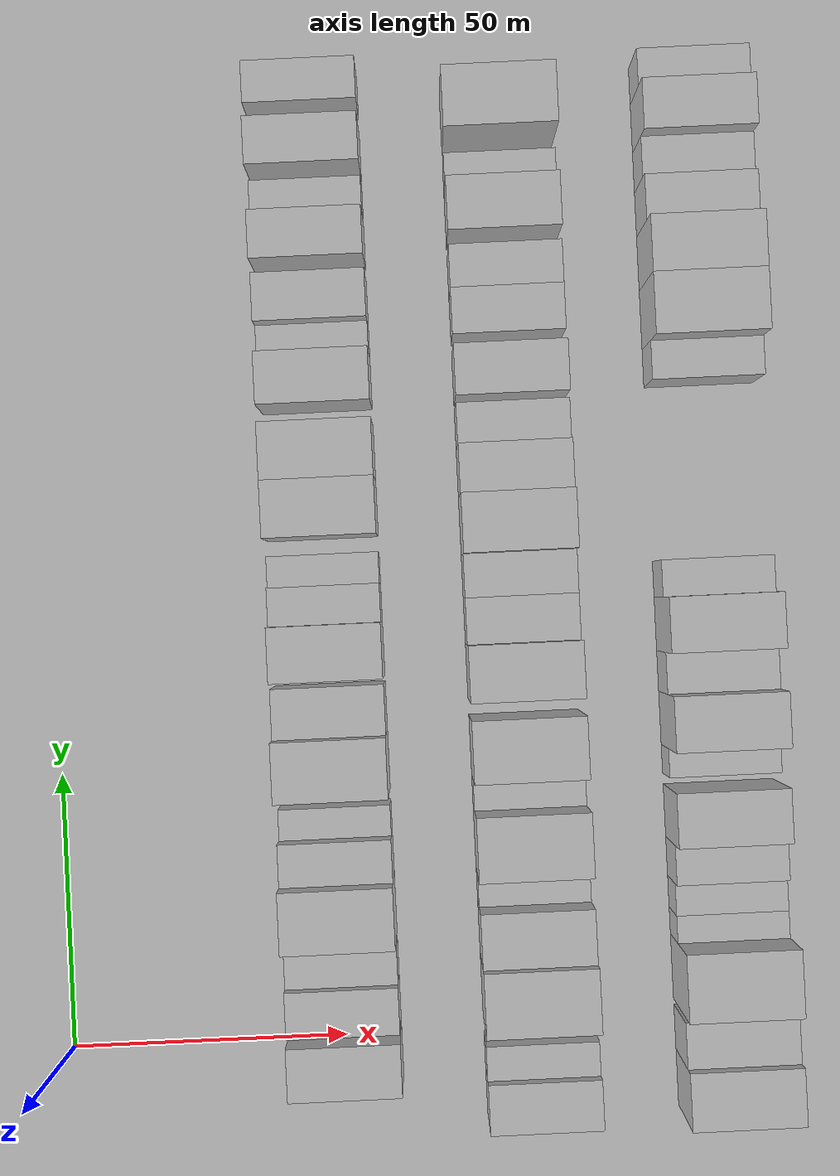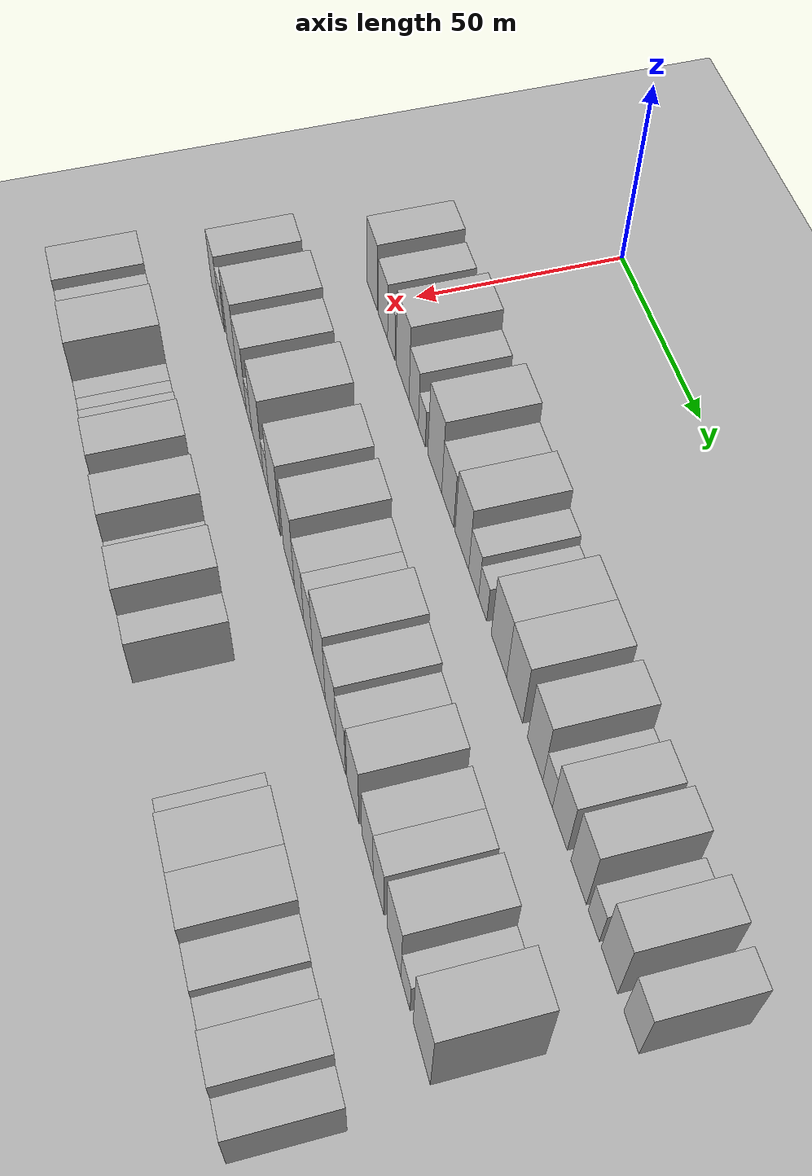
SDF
<sdf version="1.6">
 <world name="default">
  <include><name>ground_plane_1</name><uri>model://HANNAS_ground_plane</uri></include>
  <include>
   <name>ground_plane_2</name>
   <uri>model://HANNAS_ground_plane</uri>
   <pose>100 0 0  0 0 0</pose>
  </include>
  <model name="building_40">
   <static>1</static>
   <pose>50.0000 -2.5886 0 0.000000 0.000000 0.000000</pose>
   <link name="link">
    <pose>0 0 10.50 0 0 0</pose>
    <collision name="collision"><geometry><box><size>20.0000 9.3358 21.0000</size></box></geometry></collision>
    <visual name="visual">
     <cast_shadows>0</cast_shadows>
     <geometry><box><size>20.0000 9.3358 21.0000</size></box></geometry>
     <material>
      <script>
       <uri>model://HANNAS_wall/materials/scripts</uri>
       <uri>model://HANNAS_wall/materials/textures</uri>
       <name>vrc/HANNAS_wall</name>
      </script>
     </material>
    </visual>
   </link>
  </model>
  <model name="building_41">
   <static>1</static>
   <pose>50.0000 7.1892 0 0.000000 0.000000 0.000000</pose>
   <link name="link">
    <pose>0 0 9.00 0 0 0</pose>
    <collision name="collision"><geometry><box><size>20.0000 8.2199 18.0000</size></box></geometry></collision>
    <visual name="visual">
     <cast_shadows>0</cast_shadows>
     <geometry><box><size>20.0000 8.2199 18.0000</size></box></geometry>
     <material>
      <script>
       <uri>model://HANNAS_wall/materials/scripts</uri>
       <uri>model://HANNAS_wall/materials/textures</uri>
       <name>vrc/HANNAS_wall</name>
      </script>
     </material>
    </visual>
   </link>
  </model>
  <model name="building_42">
   <static>1</static>
   <pose>50.0000 14.4891 0 0.000000 0.000000 0.000000</pose>
   <link name="link">
    <pose>0 0 7.50 0 0 0</pose>
    <collision name="collision"><geometry><box><size>20.0000 6.3799 15.0000</size></box></geometry></collision>
    <visual name="visual">
     <cast_shadows>0</cast_shadows>
     <geometry><box><size>20.0000 6.3799 15.0000</size></box></geometry>
     <material>
      <script>
       <uri>model://HANNAS_wall/materials/scripts</uri>
       <uri>model://HANNAS_wall/materials/textures</uri>
       <name>vrc/HANNAS_wall</name>
      </script>
     </material>
    </visual>
   </link>
  </model>
  <model name="building_43">
   <static>1</static>
   <pose>50.0000 24.1410 0 0.000000 0.000000 0.000000</pose>
   <link name="link">
    <pose>0 0 12.00 0 0 0</pose>
    <collision name="collision"><geometry><box><size>20.0000 10.9238 24.0000</size></box></geometry></collision>
    <visual name="visual">
     <cast_shadows>0</cast_shadows>
     <geometry><box><size>20.0000 10.9238 24.0000</size></box></geometry>
     <material>
      <script>
       <uri>model://HANNAS_wall/materials/scripts</uri>
       <uri>model://HANNAS_wall/materials/textures</uri>
       <name>vrc/HANNAS_wall</name>
      </script>
     </material>
    </visual>
   </link>
  </model>
  <model name="building_44">
   <static>1</static>
   <pose>50.0000 33.4084 0 0.000000 0.000000 0.000000</pose>
   <link name="link">
    <pose>0 0 9.00 0 0 0</pose>
    <collision name="collision"><geometry><box><size>20.0000 7.6111 18.0000</size></box></geometry></collision>
    <visual name="visual">
     <cast_shadows>0</cast_shadows>
     <geometry><box><size>20.0000 7.6111 18.0000</size></box></geometry>
     <material>
      <script>
       <uri>model://HANNAS_wall/materials/scripts</uri>
       <uri>model://HANNAS_wall/materials/textures</uri>
       <name>vrc/HANNAS_wall</name>
      </script>
     </material>
    </visual>
   </link>
  </model>
  <model name="building_45">
   <static>1</static>
   <pose>50.0000 39.9796 0 0.000000 0.000000 0.000000</pose>
   <link name="link">
    <pose>0 0 6.00 0 0 0</pose>
    <collision name="collision"><geometry><box><size>20.0000 5.5313 12.0000</size></box></geometry></collision>
    <visual name="visual">
     <cast_shadows>0</cast_shadows>
     <geometry><box><size>20.0000 5.5313 12.0000</size></box></geometry>
     <material>
      <script>
       <uri>model://HANNAS_wall/materials/scripts</uri>
       <uri>model://HANNAS_wall/materials/textures</uri>
       <name>vrc/HANNAS_wall</name>
      </script>
     </material>
    </visual>
   </link>
  </model>
  <model name="building_46">
   <static>1</static>
   <pose>50.0000 50.0990 0 0.000000 0.000000 0.000000</pose>
   <link name="link">
    <pose>0 0 12.00 0 0 0</pose>
    <collision name="collision"><geometry><box><size>20.0000 10.7075 24.0000</size></box></geometry></collision>
    <visual name="visual">
     <cast_shadows>0</cast_shadows>
     <geometry><box><size>20.0000 10.7075 24.0000</size></box></geometry>
     <material>
      <script>
       <uri>model://HANNAS_wall/materials/scripts</uri>
       <uri>model://HANNAS_wall/materials/textures</uri>
       <name>vrc/HANNAS_wall</name>
      </script>
     </material>
    </visual>
   </link>
  </model>
  <model name="building_47">
   <static>1</static>
   <pose>50.0000 59.9504 0 0.000000 0.000000 0.000000</pose>
   <link name="link">
    <pose>0 0 9.00 0 0 0</pose>
    <collision name="collision"><geometry><box><size>20.0000 8.9954 18.0000</size></box></geometry></collision>
    <visual name="visual">
     <cast_shadows>0</cast_shadows>
     <geometry><box><size>20.0000 8.9954 18.0000</size></box></geometry>
     <material>
      <script>
       <uri>model://HANNAS_wall/materials/scripts</uri>
       <uri>model://HANNAS_wall/materials/textures</uri>
       <name>vrc/HANNAS_wall</name>
      </script>
     </material>
    </visual>
   </link>
  </model>
  <model name="building_48">
   <static>1</static>
   <pose>50.0000 70.3845 0 0.000000 0.000000 0.000000</pose>
   <link name="link">
    <pose>0 0 10.50 0 0 0</pose>
    <collision name="collision"><geometry><box><size>20.0000 9.8727 21.0000</size></box></geometry></collision>
    <visual name="visual">
     <cast_shadows>0</cast_shadows>
     <geometry><box><size>20.0000 9.8727 21.0000</size></box></geometry>
     <material>
      <script>
       <uri>model://HANNAS_wall/materials/scripts</uri>
       <uri>model://HANNAS_wall/materials/textures</uri>
       <name>vrc/HANNAS_wall</name>
      </script>
     </material>
    </visual>
   </link>
  </model>
  <model name="building_49">
   <static>1</static>
   <pose>50.0000 78.7735 0 0.000000 0.000000 0.000000</pose>
   <link name="link">
    <pose>0 0 7.50 0 0 0</pose>
    <collision name="collision"><geometry><box><size>20.0000 6.9052 15.0000</size></box></geometry></collision>
    <visual name="visual">
     <cast_shadows>0</cast_shadows>
     <geometry><box><size>20.0000 6.9052 15.0000</size></box></geometry>
     <material>
      <script>
       <uri>model://HANNAS_wall/materials/scripts</uri>
       <uri>model://HANNAS_wall/materials/textures</uri>
       <name>vrc/HANNAS_wall</name>
      </script>
     </material>
    </visual>
   </link>
  </model>
  <model name="building_50">
   <static>1</static>
   <pose>50.0000 85.0371 0 0.000000 0.000000 0.000000</pose>
   <link name="link">
    <pose>0 0 6.00 0 0 0</pose>
    <collision name="collision"><geometry><box><size>20.0000 5.6220 12.0000</size></box></geometry></collision>
    <visual name="visual">
     <cast_shadows>0</cast_shadows>
     <geometry><box><size>20.0000 5.6220 12.0000</size></box></geometry>
     <material>
      <script>
       <uri>model://HANNAS_wall/materials/scripts</uri>
       <uri>model://HANNAS_wall/materials/textures</uri>
       <name>vrc/HANNAS_wall</name>
      </script>
     </material>
    </visual>
   </link>
  </model>
  <model name="building_51">
   <static>1</static>
   <pose>50.0000 95.9255 0 0.000000 0.000000 0.000000</pose>
   <link name="link">
    <pose>0 0 10.50 0 0 0</pose>
    <collision name="collision"><geometry><box><size>20.0000 10.1547 21.0000</size></box></geometry></collision>
    <visual name="visual">
     <cast_shadows>0</cast_shadows>
     <geometry><box><size>20.0000 10.1547 21.0000</size></box></geometry>
     <material>
      <script>
       <uri>model://HANNAS_wall/materials/scripts</uri>
       <uri>model://HANNAS_wall/materials/textures</uri>
       <name>vrc/HANNAS_wall</name>
      </script>
     </material>
    </visual>
   </link>
  </model>
  <model name="building_52">
   <static>1</static>
   <pose>50.0000 106.0826 0 0.000000 0.000000 0.000000</pose>
   <link name="link">
    <pose>0 0 10.50 0 0 0</pose>
    <collision name="collision"><geometry><box><size>20.0000 10.1595 21.0000</size></box></geometry></collision>
    <visual name="visual">
     <cast_shadows>0</cast_shadows>
     <geometry><box><size>20.0000 10.1595 21.0000</size></box></geometry>
     <material>
      <script>
       <uri>model://HANNAS_wall/materials/scripts</uri>
       <uri>model://HANNAS_wall/materials/textures</uri>
       <name>vrc/HANNAS_wall</name>
      </script>
     </material>
    </visual>
   </link>
  </model>
  <model name="building_53">
   <static>1</static>
   <pose>50.0000 118.8190 0 0.000000 0.000000 0.000000</pose>
   <link name="link">
    <pose>0 0 10.50 0 0 0</pose>
    <collision name="collision"><geometry><box><size>20.0000 9.3132 21.0000</size></box></geometry></collision>
    <visual name="visual">
     <cast_shadows>0</cast_shadows>
     <geometry><box><size>20.0000 9.3132 21.0000</size></box></geometry>
     <material>
      <script>
       <uri>model://HANNAS_wall/materials/scripts</uri>
       <uri>model://HANNAS_wall/materials/textures</uri>
       <name>vrc/HANNAS_wall</name>
      </script>
     </material>
    </visual>
   </link>
  </model>
  <model name="building_54">
   <static>1</static>
   <pose>50.0000 126.2785 0 0.000000 0.000000 0.000000</pose>
   <link name="link">
    <pose>0 0 6.00 0 0 0</pose>
    <collision name="collision"><geometry><box><size>20.0000 5.6057 12.0000</size></box></geometry></collision>
    <visual name="visual">
     <cast_shadows>0</cast_shadows>
     <geometry><box><size>20.0000 5.6057 12.0000</size></box></geometry>
     <material>
      <script>
       <uri>model://HANNAS_wall/materials/scripts</uri>
       <uri>model://HANNAS_wall/materials/textures</uri>
       <name>vrc/HANNAS_wall</name>
      </script>
     </material>
    </visual>
   </link>
  </model>
  <model name="building_55">
   <static>1</static>
   <pose>50.0000 133.3450 0 0.000000 0.000000 0.000000</pose>
   <link name="link">
    <pose>0 0 9.00 0 0 0</pose>
    <collision name="collision"><geometry><box><size>20.0000 8.5273 18.0000</size></box></geometry></collision>
    <visual name="visual">
     <cast_shadows>0</cast_shadows>
     <geometry><box><size>20.0000 8.5273 18.0000</size></box></geometry>
     <material>
      <script>
       <uri>model://HANNAS_wall/materials/scripts</uri>
       <uri>model://HANNAS_wall/materials/textures</uri>
       <name>vrc/HANNAS_wall</name>
      </script>
     </material>
    </visual>
   </link>
  </model>
  <model name="building_56">
   <static>1</static>
   <pose>50.0000 143.8687 0 0.000000 0.000000 0.000000</pose>
   <link name="link">
    <pose>0 0 10.50 0 0 0</pose>
    <collision name="collision"><geometry><box><size>20.0000 8.5202 21.0000</size></box></geometry></collision>
    <visual name="visual">
     <cast_shadows>0</cast_shadows>
     <geometry><box><size>20.0000 8.5202 21.0000</size></box></geometry>
     <material>
      <script>
       <uri>model://HANNAS_wall/materials/scripts</uri>
       <uri>model://HANNAS_wall/materials/textures</uri>
       <name>vrc/HANNAS_wall</name>
      </script>
     </material>
    </visual>
   </link>
  </model>
  <model name="building_57">
   <static>1</static>
   <pose>50.0000 152.0694 0 0.000000 0.000000 0.000000</pose>
   <link name="link">
    <pose>0 0 6.00 0 0 0</pose>
    <collision name="collision"><geometry><box><size>20.0000 5.8811 12.0000</size></box></geometry></collision>
    <visual name="visual">
     <cast_shadows>0</cast_shadows>
     <geometry><box><size>20.0000 5.8811 12.0000</size></box></geometry>
     <material>
      <script>
       <uri>model://HANNAS_wall/materials/scripts</uri>
       <uri>model://HANNAS_wall/materials/textures</uri>
       <name>vrc/HANNAS_wall</name>
      </script>
     </material>
    </visual>
   </link>
  </model>
  <model name="building_58">
   <static>1</static>
   <pose>50.0000 160.2288 0 0.000000 0.000000 0.000000</pose>
   <link name="link">
    <pose>0 0 10.50 0 0 0</pose>
    <collision name="collision"><geometry><box><size>20.0000 8.4379 21.0000</size></box></geometry></collision>
    <visual name="visual">
     <cast_shadows>0</cast_shadows>
     <geometry><box><size>20.0000 8.4379 21.0000</size></box></geometry>
     <material>
      <script>
       <uri>model://HANNAS_wall/materials/scripts</uri>
       <uri>model://HANNAS_wall/materials/textures</uri>
       <name>vrc/HANNAS_wall</name>
      </script>
     </material>
    </visual>
   </link>
  </model>
  <model name="building_59">
   <static>1</static>
   <pose>50.0000 171.1555 0 0.000000 0.000000 0.000000</pose>
   <link name="link">
    <pose>0 0 9.00 0 0 0</pose>
    <collision name="collision"><geometry><box><size>20.0000 7.4154 18.0000</size></box></geometry></collision>
    <visual name="visual">
     <cast_shadows>0</cast_shadows>
     <geometry><box><size>20.0000 7.4154 18.0000</size></box></geometry>
     <material>
      <script>
       <uri>model://HANNAS_wall/materials/scripts</uri>
       <uri>model://HANNAS_wall/materials/textures</uri>
       <name>vrc/HANNAS_wall</name>
      </script>
     </material>
    </visual>
   </link>
  </model>
  <model name="building_119">
   <static>1</static>
   <pose>85.0000 -10.9029 0 0.000000 0.000000 0.000000</pose>
   <link name="link">
    <pose>0 0 9.00 0 0 0</pose>
    <collision name="collision"><geometry><box><size>20.0000 8.8769 18.0000</size></box></geometry></collision>
    <visual name="visual">
     <cast_shadows>0</cast_shadows>
     <geometry><box><size>20.0000 8.8769 18.0000</size></box></geometry>
     <material>
      <script>
       <uri>model://HANNAS_wall/materials/scripts</uri>
       <uri>model://HANNAS_wall/materials/textures</uri>
       <name>vrc/HANNAS_wall</name>
      </script>
     </material>
    </visual>
   </link>
  </model>
  <model name="building_120">
   <static>1</static>
   <pose>85.0000 -3.4198 0 0.000000 0.000000 0.000000</pose>
   <link name="link">
    <pose>0 0 7.50 0 0 0</pose>
    <collision name="collision"><geometry><box><size>20.0000 6.0894 15.0000</size></box></geometry></collision>
    <visual name="visual">
     <cast_shadows>0</cast_shadows>
     <geometry><box><size>20.0000 6.0894 15.0000</size></box></geometry>
     <material>
      <script>
       <uri>model://HANNAS_wall/materials/scripts</uri>
       <uri>model://HANNAS_wall/materials/textures</uri>
       <name>vrc/HANNAS_wall</name>
      </script>
     </material>
    </visual>
   </link>
  </model>
  <model name="building_121">
   <static>1</static>
   <pose>85.0000 8.3358 0 0.000000 0.000000 0.000000</pose>
   <link name="link">
    <pose>0 0 12.00 0 0 0</pose>
    <collision name="collision"><geometry><box><size>20.0000 11.4217 24.0000</size></box></geometry></collision>
    <visual name="visual">
     <cast_shadows>0</cast_shadows>
     <geometry><box><size>20.0000 11.4217 24.0000</size></box></geometry>
     <material>
      <script>
       <uri>model://HANNAS_wall/materials/scripts</uri>
       <uri>model://HANNAS_wall/materials/textures</uri>
       <name>vrc/HANNAS_wall</name>
      </script>
     </material>
    </visual>
   </link>
  </model>
  <model name="building_122">
   <static>1</static>
   <pose>85.0000 18.9233 0 0.000000 0.000000 0.000000</pose>
   <link name="link">
    <pose>0 0 10.50 0 0 0</pose>
    <collision name="collision"><geometry><box><size>20.0000 9.7534 21.0000</size></box></geometry></collision>
    <visual name="visual">
     <cast_shadows>0</cast_shadows>
     <geometry><box><size>20.0000 9.7534 21.0000</size></box></geometry>
     <material>
      <script>
       <uri>model://HANNAS_wall/materials/scripts</uri>
       <uri>model://HANNAS_wall/materials/textures</uri>
       <name>vrc/HANNAS_wall</name>
      </script>
     </material>
    </visual>
   </link>
  </model>
  <model name="building_123">
   <static>1</static>
   <pose>85.0000 26.6514 0 0.000000 0.000000 0.000000</pose>
   <link name="link">
    <pose>0 0 6.00 0 0 0</pose>
    <collision name="collision"><geometry><box><size>20.0000 5.7027 12.0000</size></box></geometry></collision>
    <visual name="visual">
     <cast_shadows>0</cast_shadows>
     <geometry><box><size>20.0000 5.7027 12.0000</size></box></geometry>
     <material>
      <script>
       <uri>model://HANNAS_wall/materials/scripts</uri>
       <uri>model://HANNAS_wall/materials/textures</uri>
       <name>vrc/HANNAS_wall</name>
      </script>
     </material>
    </visual>
   </link>
  </model>
  <model name="building_124">
   <static>1</static>
   <pose>85.0000 35.1965 0 0.000000 0.000000 0.000000</pose>
   <link name="link">
    <pose>0 0 12.00 0 0 0</pose>
    <collision name="collision"><geometry><box><size>20.0000 11.3875 24.0000</size></box></geometry></collision>
    <visual name="visual">
     <cast_shadows>0</cast_shadows>
     <geometry><box><size>20.0000 11.3875 24.0000</size></box></geometry>
     <material>
      <script>
       <uri>model://HANNAS_wall/materials/scripts</uri>
       <uri>model://HANNAS_wall/materials/textures</uri>
       <name>vrc/HANNAS_wall</name>
      </script>
     </material>
    </visual>
   </link>
  </model>
  <model name="building_125">
   <static>1</static>
   <pose>85.0000 43.7031 0 0.000000 0.000000 0.000000</pose>
   <link name="link">
    <pose>0 0 6.00 0 0 0</pose>
    <collision name="collision"><geometry><box><size>20.0000 5.6256 12.0000</size></box></geometry></collision>
    <visual name="visual">
     <cast_shadows>0</cast_shadows>
     <geometry><box><size>20.0000 5.6256 12.0000</size></box></geometry>
     <material>
      <script>
       <uri>model://HANNAS_wall/materials/scripts</uri>
       <uri>model://HANNAS_wall/materials/textures</uri>
       <name>vrc/HANNAS_wall</name>
      </script>
     </material>
    </visual>
   </link>
  </model>
  <model name="building_126">
   <static>1</static>
   <pose>85.0000 52.0295 0 0.000000 0.000000 0.000000</pose>
   <link name="link">
    <pose>0 0 12.00 0 0 0</pose>
    <collision name="collision"><geometry><box><size>20.0000 11.0273 24.0000</size></box></geometry></collision>
    <visual name="visual">
     <cast_shadows>0</cast_shadows>
     <geometry><box><size>20.0000 11.0273 24.0000</size></box></geometry>
     <material>
      <script>
       <uri>model://HANNAS_wall/materials/scripts</uri>
       <uri>model://HANNAS_wall/materials/textures</uri>
       <name>vrc/HANNAS_wall</name>
      </script>
     </material>
    </visual>
   </link>
  </model>
  <model name="building_127">
   <static>1</static>
   <pose>85.0000 65.5563 0 0.000000 0.000000 0.000000</pose>
   <link name="link">
    <pose>0 0 12.00 0 0 0</pose>
    <collision name="collision"><geometry><box><size>20.0000 10.0264 24.0000</size></box></geometry></collision>
    <visual name="visual">
     <cast_shadows>0</cast_shadows>
     <geometry><box><size>20.0000 10.0264 24.0000</size></box></geometry>
     <material>
      <script>
       <uri>model://HANNAS_wall/materials/scripts</uri>
       <uri>model://HANNAS_wall/materials/textures</uri>
       <name>vrc/HANNAS_wall</name>
      </script>
     </material>
    </visual>
   </link>
  </model>
  <model name="building_128">
   <static>1</static>
   <pose>85.0000 74.6998 0 0.000000 0.000000 0.000000</pose>
   <link name="link">
    <pose>0 0 9.00 0 0 0</pose>
    <collision name="collision"><geometry><box><size>20.0000 8.2606 18.0000</size></box></geometry></collision>
    <visual name="visual">
     <cast_shadows>0</cast_shadows>
     <geometry><box><size>20.0000 8.2606 18.0000</size></box></geometry>
     <material>
      <script>
       <uri>model://HANNAS_wall/materials/scripts</uri>
       <uri>model://HANNAS_wall/materials/textures</uri>
       <name>vrc/HANNAS_wall</name>
      </script>
     </material>
    </visual>
   </link>
  </model>
  <model name="building_129">
   <static>1</static>
   <pose>85.0000 82.6977 0 0.000000 0.000000 0.000000</pose>
   <link name="link">
    <pose>0 0 9.00 0 0 0</pose>
    <collision name="collision"><geometry><box><size>20.0000 7.7354 18.0000</size></box></geometry></collision>
    <visual name="visual">
     <cast_shadows>0</cast_shadows>
     <geometry><box><size>20.0000 7.7354 18.0000</size></box></geometry>
     <material>
      <script>
       <uri>model://HANNAS_wall/materials/scripts</uri>
       <uri>model://HANNAS_wall/materials/textures</uri>
       <name>vrc/HANNAS_wall</name>
      </script>
     </material>
    </visual>
   </link>
  </model>
  <model name="building_130">
   <static>1</static>
   <pose>85.0000 91.8012 0 0.000000 0.000000 0.000000</pose>
   <link name="link">
    <pose>0 0 12.00 0 0 0</pose>
    <collision name="collision"><geometry><box><size>20.0000 10.4715 24.0000</size></box></geometry></collision>
    <visual name="visual">
     <cast_shadows>0</cast_shadows>
     <geometry><box><size>20.0000 10.4715 24.0000</size></box></geometry>
     <material>
      <script>
       <uri>model://HANNAS_wall/materials/scripts</uri>
       <uri>model://HANNAS_wall/materials/textures</uri>
       <name>vrc/HANNAS_wall</name>
      </script>
     </material>
    </visual>
   </link>
  </model>
  <model name="building_131">
   <static>1</static>
   <pose>85.0000 101.4174 0 0.000000 0.000000 0.000000</pose>
   <link name="link">
    <pose>0 0 10.50 0 0 0</pose>
    <collision name="collision"><geometry><box><size>20.0000 8.7608 21.0000</size></box></geometry></collision>
    <visual name="visual">
     <cast_shadows>0</cast_shadows>
     <geometry><box><size>20.0000 8.7608 21.0000</size></box></geometry>
     <material>
      <script>
       <uri>model://HANNAS_wall/materials/scripts</uri>
       <uri>model://HANNAS_wall/materials/textures</uri>
       <name>vrc/HANNAS_wall</name>
      </script>
     </material>
    </visual>
   </link>
  </model>
  <model name="building_132">
   <static>1</static>
   <pose>85.0000 109.4583 0 0.000000 0.000000 0.000000</pose>
   <link name="link">
    <pose>0 0 9.00 0 0 0</pose>
    <collision name="collision"><geometry><box><size>20.0000 7.3210 18.0000</size></box></geometry></collision>
    <visual name="visual">
     <cast_shadows>0</cast_shadows>
     <geometry><box><size>20.0000 7.3210 18.0000</size></box></geometry>
     <material>
      <script>
       <uri>model://HANNAS_wall/materials/scripts</uri>
       <uri>model://HANNAS_wall/materials/textures</uri>
       <name>vrc/HANNAS_wall</name>
      </script>
     </material>
    </visual>
   </link>
  </model>
  <model name="building_133">
   <static>1</static>
   <pose>85.0000 118.6476 0 0.000000 0.000000 0.000000</pose>
   <link name="link">
    <pose>0 0 10.50 0 0 0</pose>
    <collision name="collision"><geometry><box><size>20.0000 9.0576 21.0000</size></box></geometry></collision>
    <visual name="visual">
     <cast_shadows>0</cast_shadows>
     <geometry><box><size>20.0000 9.0576 21.0000</size></box></geometry>
     <material>
      <script>
       <uri>model://HANNAS_wall/materials/scripts</uri>
       <uri>model://HANNAS_wall/materials/textures</uri>
       <name>vrc/HANNAS_wall</name>
      </script>
     </material>
    </visual>
   </link>
  </model>
  <model name="building_134">
   <static>1</static>
   <pose>85.0000 129.2675 0 0.000000 0.000000 0.000000</pose>
   <link name="link">
    <pose>0 0 9.00 0 0 0</pose>
    <collision name="collision"><geometry><box><size>20.0000 8.1823 18.0000</size></box></geometry></collision>
    <visual name="visual">
     <cast_shadows>0</cast_shadows>
     <geometry><box><size>20.0000 8.1823 18.0000</size></box></geometry>
     <material>
      <script>
       <uri>model://HANNAS_wall/materials/scripts</uri>
       <uri>model://HANNAS_wall/materials/textures</uri>
       <name>vrc/HANNAS_wall</name>
      </script>
     </material>
    </visual>
   </link>
  </model>
  <model name="building_135">
   <static>1</static>
   <pose>85.0000 137.1493 0 0.000000 0.000000 0.000000</pose>
   <link name="link">
    <pose>0 0 9.00 0 0 0</pose>
    <collision name="collision"><geometry><box><size>20.0000 7.5813 18.0000</size></box></geometry></collision>
    <visual name="visual">
     <cast_shadows>0</cast_shadows>
     <geometry><box><size>20.0000 7.5813 18.0000</size></box></geometry>
     <material>
      <script>
       <uri>model://HANNAS_wall/materials/scripts</uri>
       <uri>model://HANNAS_wall/materials/textures</uri>
       <name>vrc/HANNAS_wall</name>
      </script>
     </material>
    </visual>
   </link>
  </model>
  <model name="building_136">
   <static>1</static>
   <pose>85.0000 147.6770 0 0.000000 0.000000 0.000000</pose>
   <link name="link">
    <pose>0 0 10.50 0 0 0</pose>
    <collision name="collision"><geometry><box><size>20.0000 9.4741 21.0000</size></box></geometry></collision>
    <visual name="visual">
     <cast_shadows>0</cast_shadows>
     <geometry><box><size>20.0000 9.4741 21.0000</size></box></geometry>
     <material>
      <script>
       <uri>model://HANNAS_wall/materials/scripts</uri>
       <uri>model://HANNAS_wall/materials/textures</uri>
       <name>vrc/HANNAS_wall</name>
      </script>
     </material>
    </visual>
   </link>
  </model>
  <model name="building_137">
   <static>1</static>
   <pose>85.0000 155.3425 0 0.000000 0.000000 0.000000</pose>
   <link name="link">
    <pose>0 0 6.00 0 0 0</pose>
    <collision name="collision"><geometry><box><size>20.0000 5.8569 12.0000</size></box></geometry></collision>
    <visual name="visual">
     <cast_shadows>0</cast_shadows>
     <geometry><box><size>20.0000 5.8569 12.0000</size></box></geometry>
     <material>
      <script>
       <uri>model://HANNAS_wall/materials/scripts</uri>
       <uri>model://HANNAS_wall/materials/textures</uri>
       <name>vrc/HANNAS_wall</name>
      </script>
     </material>
    </visual>
   </link>
  </model>
  <model name="building_138">
   <static>1</static>
   <pose>85.0000 165.5948 0 0.000000 0.000000 0.000000</pose>
   <link name="link">
    <pose>0 0 12.00 0 0 0</pose>
    <collision name="collision"><geometry><box><size>20.0000 10.6478 24.0000</size></box></geometry></collision>
    <visual name="visual">
     <cast_shadows>0</cast_shadows>
     <geometry><box><size>20.0000 10.6478 24.0000</size></box></geometry>
     <material>
      <script>
       <uri>model://HANNAS_wall/materials/scripts</uri>
       <uri>model://HANNAS_wall/materials/textures</uri>
       <name>vrc/HANNAS_wall</name>
      </script>
     </material>
    </visual>
   </link>
  </model>
  <model name="building_199">
   <static>1</static>
   <pose>120.0000 -10.5228 0 0.000000 0.000000 0.000000</pose>
   <link name="link">
    <pose>0 0 10.50 0 0 0</pose>
    <collision name="collision"><geometry><box><size>20.0000 10.2314 21.0000</size></box></geometry></collision>
    <visual name="visual">
     <cast_shadows>0</cast_shadows>
     <geometry><box><size>20.0000 10.2314 21.0000</size></box></geometry>
     <material>
      <script>
       <uri>model://HANNAS_wall/materials/scripts</uri>
       <uri>model://HANNAS_wall/materials/textures</uri>
       <name>vrc/HANNAS_wall</name>
      </script>
     </material>
    </visual>
   </link>
  </model>
  <model name="building_200">
   <static>1</static>
   <pose>120.0000 -1.3325 0 0.000000 0.000000 0.000000</pose>
   <link name="link">
    <pose>0 0 9.00 0 0 0</pose>
    <collision name="collision"><geometry><box><size>20.0000 8.1494 18.0000</size></box></geometry></collision>
    <visual name="visual">
     <cast_shadows>0</cast_shadows>
     <geometry><box><size>20.0000 8.1494 18.0000</size></box></geometry>
     <material>
      <script>
       <uri>model://HANNAS_wall/materials/scripts</uri>
       <uri>model://HANNAS_wall/materials/textures</uri>
       <name>vrc/HANNAS_wall</name>
      </script>
     </material>
    </visual>
   </link>
  </model>
  <model name="building_201">
   <static>1</static>
   <pose>120.0000 9.7076 0 0.000000 0.000000 0.000000</pose>
   <link name="link">
    <pose>0 0 12.00 0 0 0</pose>
    <collision name="collision"><geometry><box><size>20.0000 11.9308 24.0000</size></box></geometry></collision>
    <visual name="visual">
     <cast_shadows>0</cast_shadows>
     <geometry><box><size>20.0000 11.9308 24.0000</size></box></geometry>
     <material>
      <script>
       <uri>model://HANNAS_wall/materials/scripts</uri>
       <uri>model://HANNAS_wall/materials/textures</uri>
       <name>vrc/HANNAS_wall</name>
      </script>
     </material>
    </visual>
   </link>
  </model>
  <model name="building_202">
   <static>1</static>
   <pose>120.0000 18.1218 0 0.000000 0.000000 0.000000</pose>
   <link name="link">
    <pose>0 0 6.00 0 0 0</pose>
    <collision name="collision"><geometry><box><size>20.0000 4.8975 12.0000</size></box></geometry></collision>
    <visual name="visual">
     <cast_shadows>0</cast_shadows>
     <geometry><box><size>20.0000 4.8975 12.0000</size></box></geometry>
     <material>
      <script>
       <uri>model://HANNAS_wall/materials/scripts</uri>
       <uri>model://HANNAS_wall/materials/textures</uri>
       <name>vrc/HANNAS_wall</name>
      </script>
     </material>
    </visual>
   </link>
  </model>
  <model name="building_203">
   <static>1</static>
   <pose>120.0000 23.4502 0 0.000000 0.000000 0.000000</pose>
   <link name="link">
    <pose>0 0 6.00 0 0 0</pose>
    <collision name="collision"><geometry><box><size>20.0000 5.7592 12.0000</size></box></geometry></collision>
    <visual name="visual">
     <cast_shadows>0</cast_shadows>
     <geometry><box><size>20.0000 5.7592 12.0000</size></box></geometry>
     <material>
      <script>
       <uri>model://HANNAS_wall/materials/scripts</uri>
       <uri>model://HANNAS_wall/materials/textures</uri>
       <name>vrc/HANNAS_wall</name>
      </script>
     </material>
    </visual>
   </link>
  </model>
  <model name="building_204">
   <static>1</static>
   <pose>120.0000 29.9098 0 0.000000 0.000000 0.000000</pose>
   <link name="link">
    <pose>0 0 7.50 0 0 0</pose>
    <collision name="collision"><geometry><box><size>20.0000 7.1600 15.0000</size></box></geometry></collision>
    <visual name="visual">
     <cast_shadows>0</cast_shadows>
     <geometry><box><size>20.0000 7.1600 15.0000</size></box></geometry>
     <material>
      <script>
       <uri>model://HANNAS_wall/materials/scripts</uri>
       <uri>model://HANNAS_wall/materials/textures</uri>
       <name>vrc/HANNAS_wall</name>
      </script>
     </material>
    </visual>
   </link>
  </model>
  <model name="building_205">
   <static>1</static>
   <pose>120.0000 38.3100 0 0.000000 0.000000 0.000000</pose>
   <link name="link">
    <pose>0 0 10.50 0 0 0</pose>
    <collision name="collision"><geometry><box><size>20.0000 9.6404 21.0000</size></box></geometry></collision>
    <visual name="visual">
     <cast_shadows>0</cast_shadows>
     <geometry><box><size>20.0000 9.6404 21.0000</size></box></geometry>
     <material>
      <script>
       <uri>model://HANNAS_wall/materials/scripts</uri>
       <uri>model://HANNAS_wall/materials/textures</uri>
       <name>vrc/HANNAS_wall</name>
      </script>
     </material>
    </visual>
   </link>
  </model>
  <model name="building_206">
   <static>1</static>
   <pose>120.0000 47.7269 0 0.000000 0.000000 0.000000</pose>
   <link name="link">
    <pose>0 0 6.00 0 0 0</pose>
    <collision name="collision"><geometry><box><size>20.0000 5.1934 12.0000</size></box></geometry></collision>
    <visual name="visual">
     <cast_shadows>0</cast_shadows>
     <geometry><box><size>20.0000 5.1934 12.0000</size></box></geometry>
     <material>
      <script>
       <uri>model://HANNAS_wall/materials/scripts</uri>
       <uri>model://HANNAS_wall/materials/textures</uri>
       <name>vrc/HANNAS_wall</name>
      </script>
     </material>
    </visual>
   </link>
  </model>
  <model name="building_207">
   <static>1</static>
   <pose>120.0000 55.2213 0 0.000000 0.000000 0.000000</pose>
   <link name="link">
    <pose>0 0 12.00 0 0 0</pose>
    <collision name="collision"><geometry><box><size>20.0000 9.7954 24.0000</size></box></geometry></collision>
    <visual name="visual">
     <cast_shadows>0</cast_shadows>
     <geometry><box><size>20.0000 9.7954 24.0000</size></box></geometry>
     <material>
      <script>
       <uri>model://HANNAS_wall/materials/scripts</uri>
       <uri>model://HANNAS_wall/materials/textures</uri>
       <name>vrc/HANNAS_wall</name>
      </script>
     </material>
    </visual>
   </link>
  </model>
  <model name="building_208">
   <static>1</static>
   <pose>120.0000 63.8328 0 0.000000 0.000000 0.000000</pose>
   <link name="link">
    <pose>0 0 7.50 0 0 0</pose>
    <collision name="collision"><geometry><box><size>20.0000 7.4277 15.0000</size></box></geometry></collision>
    <visual name="visual">
     <cast_shadows>0</cast_shadows>
     <geometry><box><size>20.0000 7.4277 15.0000</size></box></geometry>
     <material>
      <script>
       <uri>model://HANNAS_wall/materials/scripts</uri>
       <uri>model://HANNAS_wall/materials/textures</uri>
       <name>vrc/HANNAS_wall</name>
      </script>
     </material>
    </visual>
   </link>
  </model>
  <model name="building_209">
   <static>1</static>
   <pose>120.0000 72.4396 0 0.000000 0.000000 0.000000</pose>
   <link name="link">
    <pose>0 0 12.00 0 0 0</pose>
    <collision name="collision"><geometry><box><size>20.0000 9.7859 24.0000</size></box></geometry></collision>
    <visual name="visual">
     <cast_shadows>0</cast_shadows>
     <geometry><box><size>20.0000 9.7859 24.0000</size></box></geometry>
     <material>
      <script>
       <uri>model://HANNAS_wall/materials/scripts</uri>
       <uri>model://HANNAS_wall/materials/textures</uri>
       <name>vrc/HANNAS_wall</name>
      </script>
     </material>
    </visual>
   </link>
  </model>
  <model name="building_210">
   <static>1</static>
   <pose>120.0000 80.6198 0 0.000000 0.000000 0.000000</pose>
   <link name="link">
    <pose>0 0 7.50 0 0 0</pose>
    <collision name="collision"><geometry><box><size>20.0000 6.5746 15.0000</size></box></geometry></collision>
    <visual name="visual">
     <cast_shadows>0</cast_shadows>
     <geometry><box><size>20.0000 6.5746 15.0000</size></box></geometry>
     <material>
      <script>
       <uri>model://HANNAS_wall/materials/scripts</uri>
       <uri>model://HANNAS_wall/materials/textures</uri>
       <name>vrc/HANNAS_wall</name>
      </script>
     </material>
    </visual>
   </link>
  </model>
  <model name="building_211">
   <static>1</static>
   <pose>120.0000 119.2564 0 0.000000 0.000000 0.000000</pose>
   <link name="link">
    <pose>0 0 7.50 0 0 0</pose>
    <collision name="collision"><geometry><box><size>20.0000 6.8995 15.0000</size></box></geometry></collision>
    <visual name="visual">
     <cast_shadows>0</cast_shadows>
     <geometry><box><size>20.0000 6.8995 15.0000</size></box></geometry>
     <material>
      <script>
       <uri>model://HANNAS_wall/materials/scripts</uri>
       <uri>model://HANNAS_wall/materials/textures</uri>
       <name>vrc/HANNAS_wall</name>
      </script>
     </material>
    </visual>
   </link>
  </model>
  <model name="building_212">
   <static>1</static>
   <pose>120.0000 128.1244 0 0.000000 0.000000 0.000000</pose>
   <link name="link">
    <pose>0 0 12.00 0 0 0</pose>
    <collision name="collision"><geometry><box><size>20.0000 10.8366 24.0000</size></box></geometry></collision>
    <visual name="visual">
     <cast_shadows>0</cast_shadows>
     <geometry><box><size>20.0000 10.8366 24.0000</size></box></geometry>
     <material>
      <script>
       <uri>model://HANNAS_wall/materials/scripts</uri>
       <uri>model://HANNAS_wall/materials/textures</uri>
       <name>vrc/HANNAS_wall</name>
      </script>
     </material>
    </visual>
   </link>
  </model>
  <model name="building_213">
   <static>1</static>
   <pose>120.0000 138.4976 0 0.000000 0.000000 0.000000</pose>
   <link name="link">
    <pose>0 0 12.00 0 0 0</pose>
    <collision name="collision"><geometry><box><size>20.0000 9.9098 24.0000</size></box></geometry></collision>
    <visual name="visual">
     <cast_shadows>0</cast_shadows>
     <geometry><box><size>20.0000 9.9098 24.0000</size></box></geometry>
     <material>
      <script>
       <uri>model://HANNAS_wall/materials/scripts</uri>
       <uri>model://HANNAS_wall/materials/textures</uri>
       <name>vrc/HANNAS_wall</name>
      </script>
     </material>
    </visual>
   </link>
  </model>
  <model name="building_214">
   <static>1</static>
   <pose>120.0000 147.5301 0 0.000000 0.000000 0.000000</pose>
   <link name="link">
    <pose>0 0 9.00 0 0 0</pose>
    <collision name="collision"><geometry><box><size>20.0000 8.1551 18.0000</size></box></geometry></collision>
    <visual name="visual">
     <cast_shadows>0</cast_shadows>
     <geometry><box><size>20.0000 8.1551 18.0000</size></box></geometry>
     <material>
      <script>
       <uri>model://HANNAS_wall/materials/scripts</uri>
       <uri>model://HANNAS_wall/materials/textures</uri>
       <name>vrc/HANNAS_wall</name>
      </script>
     </material>
    </visual>
   </link>
  </model>
  <model name="building_215">
   <static>1</static>
   <pose>120.0000 155.2398 0 0.000000 0.000000 0.000000</pose>
   <link name="link">
    <pose>0 0 7.50 0 0 0</pose>
    <collision name="collision"><geometry><box><size>20.0000 7.2643 15.0000</size></box></geometry></collision>
    <visual name="visual">
     <cast_shadows>0</cast_shadows>
     <geometry><box><size>20.0000 7.2643 15.0000</size></box></geometry>
     <material>
      <script>
       <uri>model://HANNAS_wall/materials/scripts</uri>
       <uri>model://HANNAS_wall/materials/textures</uri>
       <name>vrc/HANNAS_wall</name>
      </script>
     </material>
    </visual>
   </link>
  </model>
  <model name="building_216">
   <static>1</static>
   <pose>120.0000 163.3300 0 0.000000 0.000000 0.000000</pose>
   <link name="link">
    <pose>0 0 10.50 0 0 0</pose>
    <collision name="collision"><geometry><box><size>20.0000 8.9161 21.0000</size></box></geometry></collision>
    <visual name="visual">
     <cast_shadows>0</cast_shadows>
     <geometry><box><size>20.0000 8.9161 21.0000</size></box></geometry>
     <material>
      <script>
       <uri>model://HANNAS_wall/materials/scripts</uri>
       <uri>model://HANNAS_wall/materials/textures</uri>
       <name>vrc/HANNAS_wall</name>
      </script>
     </material>
    </visual>
   </link>
  </model>
  <model name="building_217">
   <static>1</static>
   <pose>120.0000 171.1380 0 0.000000 0.000000 0.000000</pose>
   <link name="link">
    <pose>0 0 7.50 0 0 0</pose>
    <collision name="collision"><geometry><box><size>20.0000 6.7000 15.0000</size></box></geometry></collision>
    <visual name="visual">
     <cast_shadows>0</cast_shadows>
     <geometry><box><size>20.0000 6.7000 15.0000</size></box></geometry>
     <material>
      <script>
       <uri>model://HANNAS_wall/materials/scripts</uri>
       <uri>model://HANNAS_wall/materials/textures</uri>
       <name>vrc/HANNAS_wall</name>
      </script>
     </material>
    </visual>
   </link>
  </model>
 </world>
</sdf>
